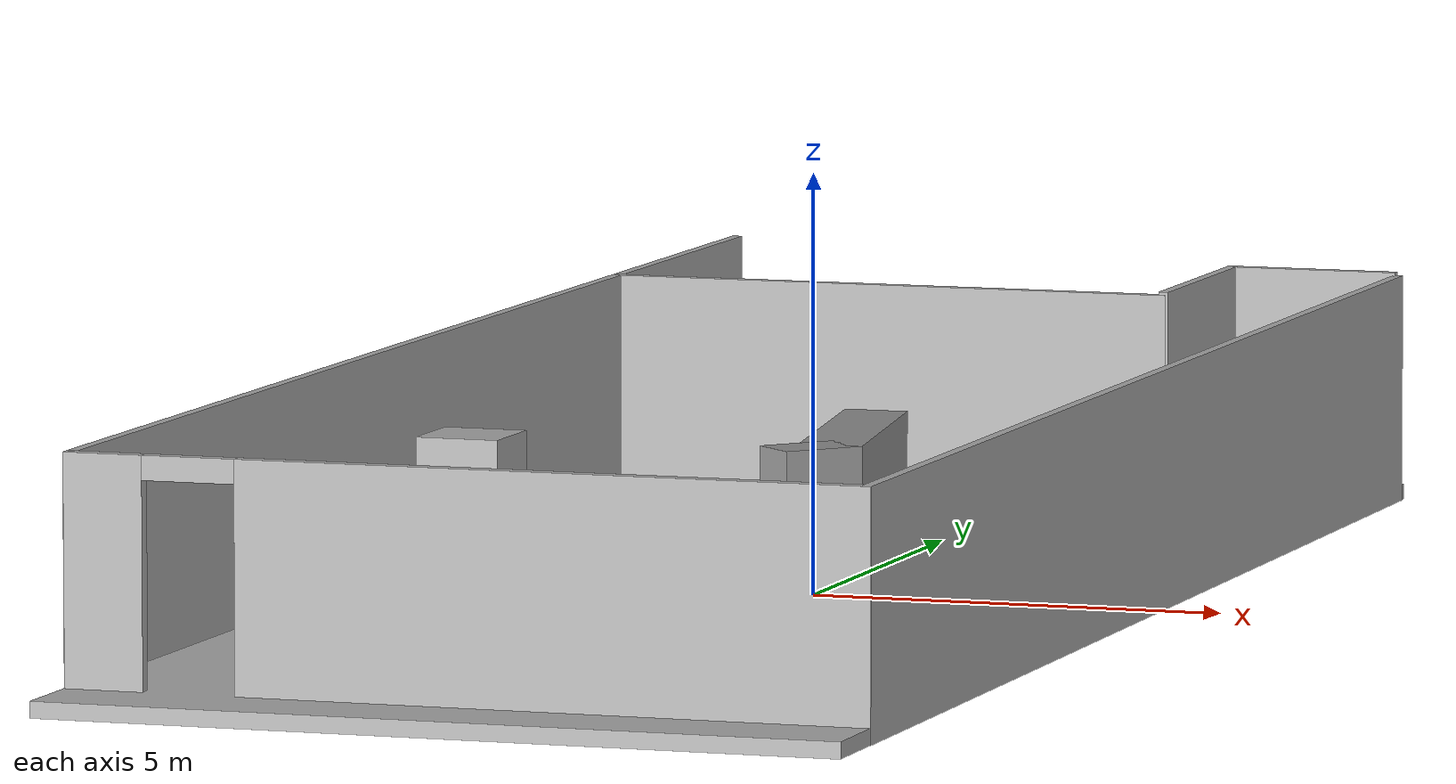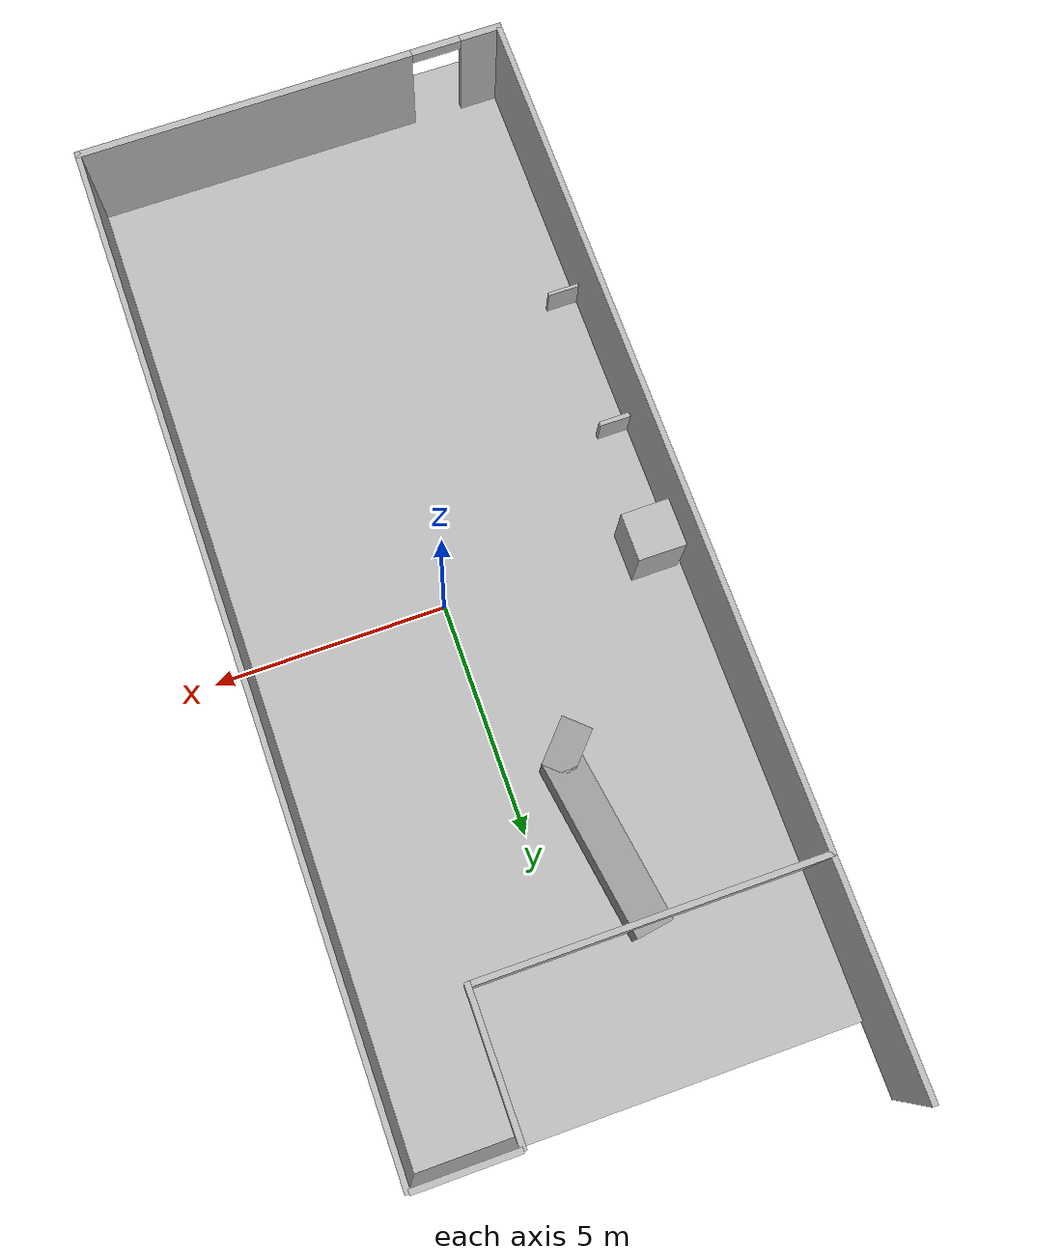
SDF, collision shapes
<?xml version="1.0" ?>
<sdf version="1.5">
  <model name="cafe">
    <static>true</static>
    <link name="link">
      <collision name="main_floor">
        <pose>-0.4 -0.75 0.0948 0 0 0</pose>
        <geometry>
          <box>
            <size>9.38 22.63 0.19</size>
          </box>
        </geometry>
      </collision>

      <collision name="wall_1">
        <pose>-5.03 0.53 1.415 0 0 0</pose>
        <geometry>
          <box>
            <size>.12 23.16 2.83</size>
          </box>
        </geometry>
      </collision>

      <collision name="wall_2">
        <pose>4.24 -.31 1.415 0 0 0</pose>
        <geometry>
          <box>
            <size>.12 21.48 2.83</size>
          </box>
        </geometry>
      </collision>

      <collision name="wall_3">
        <pose>-1.48 7.43 1.415 0 0 0</pose>
        <geometry>
          <box>
            <size>7.2 0.12 2.83</size>
          </box>
        </geometry>
      </collision>

      <collision name="wall_4">
        <pose>2.09 8.9 1.435 0 0 0</pose>
        <geometry>
          <box>
            <size>0.12 3.05 2.87</size>
          </box>
        </geometry>
      </collision>

      <collision name="wall_5">
        <pose>3.155 10.4 1.435 0 0 0</pose>
        <geometry>
          <box>
            <size>2.13 0.12 2.87</size>
          </box>
        </geometry>
      </collision>

      <collision name="wall_6">
        <pose>0.615 -10.98 1.415 0 0 0</pose>
        <geometry>
          <box>
            <size>7.36 0.15 2.83</size>
          </box>
        </geometry>
      </collision>

      <collision name="wall_7">
        <pose>-4.62 -10.98 1.415 0 0 0</pose>
        <geometry>
          <box>
            <size>0.93 0.15 2.83</size>
          </box>
        </geometry>
      </collision>

      <collision name="wall_8">
        <pose>-3.61 -10.98 2.69 0 0 0</pose>
        <geometry>
          <box>
            <size>1.09 0.15 0.28</size>
          </box>
        </geometry>
      </collision>

      <collision name="coke">
        <pose>-4.385 0.26 .95 0 0 0</pose>
        <geometry>
          <box>
            <size>1.03 1.03 1.52</size>
          </box>
        </geometry>
      </collision>

      <collision name="wall_9">
        <pose>-4.63663 -2.450024 0.475902 0 -0 0</pose>
        <geometry>
          <box>
            <size>0.68 0.097 1</size>
          </box>
        </geometry>
      </collision>

      <collision name="wall_10">
        <pose>-4.63629 -5.58922 0.475902 0 -0 0</pose>
        <geometry>
          <box>
            <size>0.68 0.071 1</size>
          </box>
        </geometry>
      </collision>

      <visual name="visual">
        <geometry>
          <mesh>
            <uri>model://cafe/meshes/cafe.dae</uri>
          </mesh>
        </geometry>
      </visual>
    </link>

    <link name='link_0'>
      <inertial>
        <mass>1</mass>
        <inertia>
          <ixx>0.166667</ixx>
          <ixy>0</ixy>
          <ixz>0</ixz>
          <iyy>0.166667</iyy>
          <iyz>0</iyz>
          <izz>0.166667</izz>
        </inertia>
        <pose>0 0 0 0 -0 0</pose>
      </inertial>
      <pose>-1.36129 5.73888 0.7 0 -0 0.154454</pose>
      <gravity>1</gravity>
      <self_collide>0</self_collide>
      <kinematic>0</kinematic>
      <enable_wind>0</enable_wind>
      <visual name='visual'>
        <pose>0 0 0 0 -0 0</pose>
        <geometry>
          <box>
            <size>0.8 3.8 1.133</size>
          </box>
        </geometry>
        <material>
          <lighting>1</lighting>
          <script>
            <uri>file://media/materials/scripts/gazebo.material</uri>
            <name>Gazebo/Grey</name>
          </script>
          <shader type='pixel'>
            <normal_map>__default__</normal_map>
          </shader>
          <ambient>0.3 0.3 0.3 1</ambient>
          <diffuse>0.7 0.7 0.7 1</diffuse>
          <specular>0.01 0.01 0.01 1</specular>
          <emissive>0 0 0 1</emissive>
        </material>
        <transparency>0</transparency>
        <cast_shadows>1</cast_shadows>
      </visual>
      <collision name='collision'>
        <laser_retro>0</laser_retro>
        <max_contacts>10</max_contacts>
        <pose>0 0 0 0 -0 0</pose>
        <geometry>
          <box>
            <size>0.8 3.8 1.133</size>
          </box>
        </geometry>
        <surface>
          <friction>
            <ode>
              <mu>1</mu>
              <mu2>1</mu2>
              <fdir1>0 0 0</fdir1>
              <slip1>0</slip1>
              <slip2>0</slip2>
            </ode>
            <torsional>
              <coefficient>1</coefficient>
              <patch_radius>0</patch_radius>
              <surface_radius>0</surface_radius>
              <use_patch_radius>1</use_patch_radius>
              <ode>
                <slip>0</slip>
              </ode>
            </torsional>
          </friction>
          <bounce>
            <restitution_coefficient>0</restitution_coefficient>
            <threshold>1e+06</threshold>
          </bounce>
          <contact>
            <collide_without_contact>0</collide_without_contact>
            <collide_without_contact_bitmask>1</collide_without_contact_bitmask>
            <collide_bitmask>1</collide_bitmask>
            <ode>
              <soft_cfm>0</soft_cfm>
              <soft_erp>0.2</soft_erp>
              <kp>1e+13</kp>
              <kd>1</kd>
              <max_vel>0.01</max_vel>
              <min_depth>0</min_depth>
            </ode>
            <bullet>
              <split_impulse>1</split_impulse>
              <split_impulse_penetration_threshold>-0.01</split_impulse_penetration_threshold>
              <soft_cfm>0</soft_cfm>
              <soft_erp>0.2</soft_erp>
              <kp>1e+13</kp>
              <kd>1</kd>
            </bullet>
          </contact>
        </surface>
      </collision>
    </link>
    <link name='link_0_clone'>
      <inertial>
        <mass>1</mass>
        <inertia>
          <ixx>0.166667</ixx>
          <ixy>0</ixy>
          <ixz>0</ixz>
          <iyy>0.166667</iyy>
          <iyz>0</iyz>
          <izz>0.166667</izz>
        </inertia>
        <pose>0 0 0 0 -0 0</pose>
      </inertial>
      <pose>-1.2715 3.75752 0.7 0 0 -0.741659</pose>
      <gravity>1</gravity>
      <self_collide>0</self_collide>
      <kinematic>0</kinematic>
      <enable_wind>0</enable_wind>
      <visual name='visual'>
        <pose>0 0 0 0 -0 0</pose>
        <geometry>
          <box>
            <size>0.66 1.06 1.133</size>
          </box>
        </geometry>
        <material>
          <lighting>1</lighting>
          <script>
            <uri>file://media/materials/scripts/gazebo.material</uri>
            <name>Gazebo/Grey</name>
          </script>
          <shader type='pixel'>
            <normal_map>__default__</normal_map>
          </shader>
          <ambient>0.3 0.3 0.3 1</ambient>
          <diffuse>0.7 0.7 0.7 1</diffuse>
          <specular>0.01 0.01 0.01 1</specular>
          <emissive>0 0 0 1</emissive>
        </material>
        <transparency>0</transparency>
        <cast_shadows>1</cast_shadows>
      </visual>
      <collision name='collision'>
        <laser_retro>0</laser_retro>
        <max_contacts>10</max_contacts>
        <pose>0 0 0 0 -0 0</pose>
        <geometry>
          <box>
            <size>0.66 1.06 1.133</size>
          </box>
        </geometry>
        <surface>
          <friction>
            <ode>
              <mu>1</mu>
              <mu2>1</mu2>
              <fdir1>0 0 0</fdir1>
              <slip1>0</slip1>
              <slip2>0</slip2>
            </ode>
            <torsional>
              <coefficient>1</coefficient>
              <patch_radius>0</patch_radius>
              <surface_radius>0</surface_radius>
              <use_patch_radius>1</use_patch_radius>
              <ode>
                <slip>0</slip>
              </ode>
            </torsional>
          </friction>
          <bounce>
            <restitution_coefficient>0</restitution_coefficient>
            <threshold>1e+06</threshold>
          </bounce>
          <contact>
            <collide_without_contact>0</collide_without_contact>
            <collide_without_contact_bitmask>1</collide_without_contact_bitmask>
            <collide_bitmask>1</collide_bitmask>
            <ode>
              <soft_cfm>0</soft_cfm>
              <soft_erp>0.2</soft_erp>
              <kp>1e+13</kp>
              <kd>1</kd>
              <max_vel>0.01</max_vel>
              <min_depth>0</min_depth>
            </ode>
            <bullet>
              <split_impulse>1</split_impulse>
              <split_impulse_penetration_threshold>-0.01</split_impulse_penetration_threshold>
              <soft_cfm>0</soft_cfm>
              <soft_erp>0.2</soft_erp>
              <kp>1e+13</kp>
              <kd>1</kd>
            </bullet>
          </contact>
        </surface>
      </collision>
    </link>

  </model>
</sdf>
